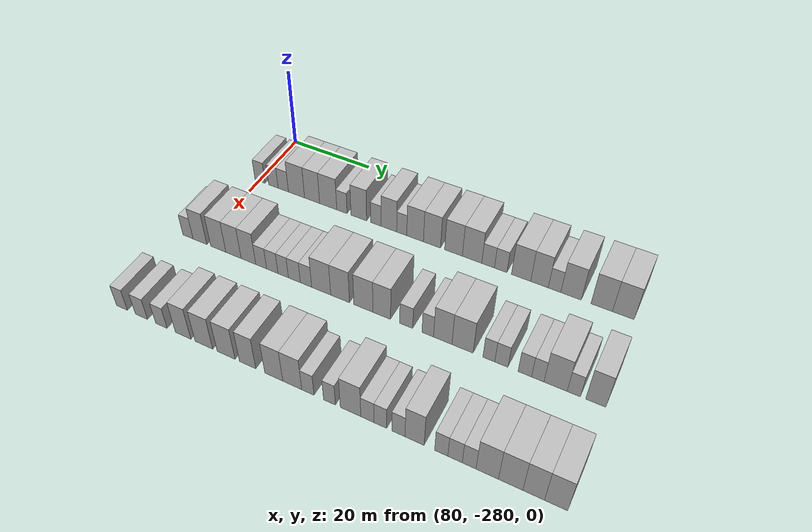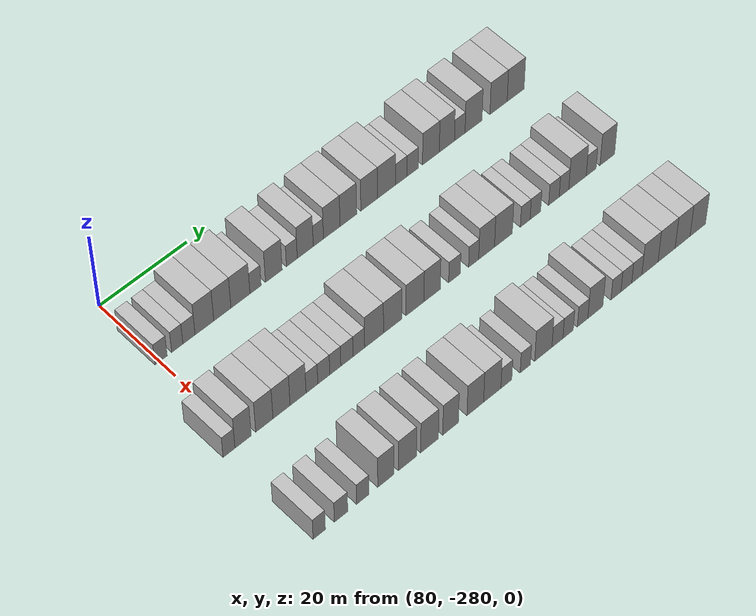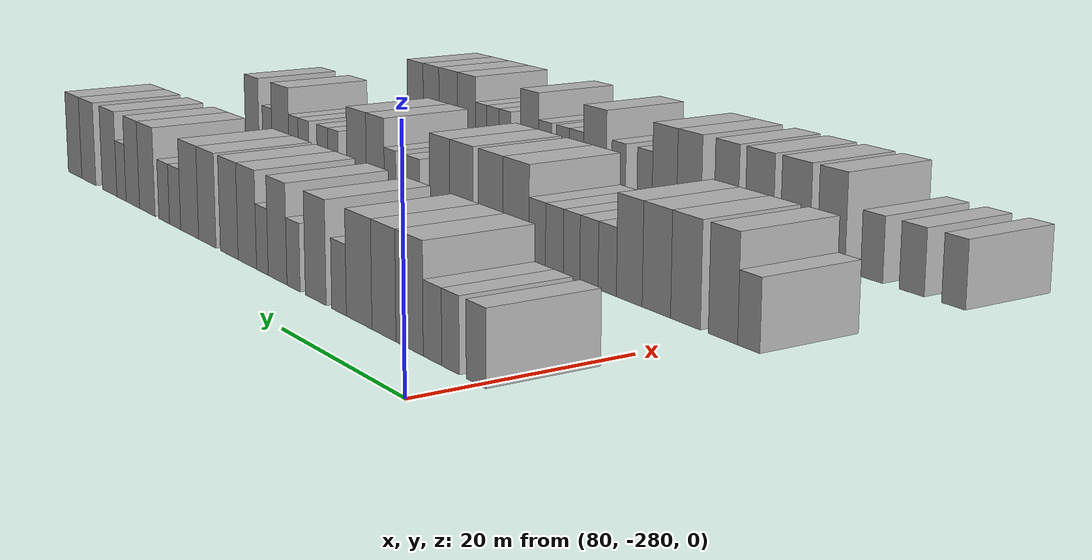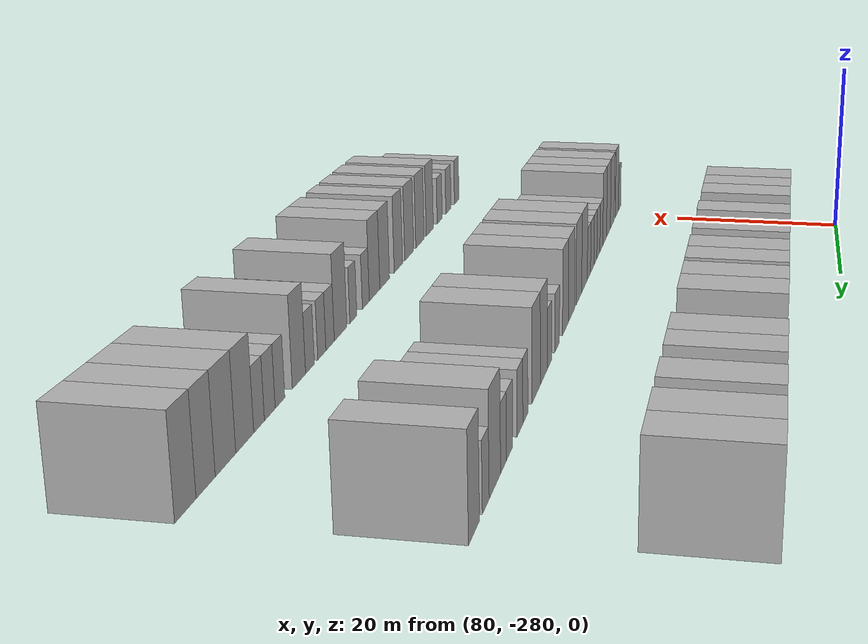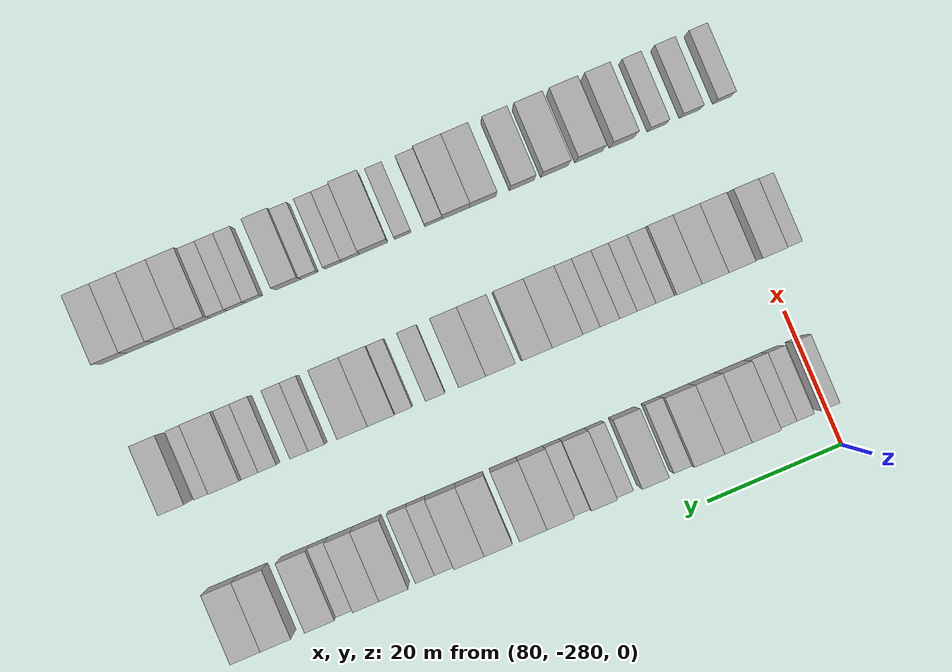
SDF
<sdf version="1.6">
 <world name="default">
  <model name="building_612">
   <static>1</static>
   <pose>91.0000 -279.7096 0 0.000000 0.000000 0.000000</pose>
   <link name="link">
    <pose>0 0 3.00 0 0 0</pose>
    <collision name="collision"><geometry><box><size>10.0000 2.7474 6.0000</size></box></geometry></collision>
    <visual name="visual">
     <cast_shadows>0</cast_shadows>
     <geometry><box><size>10.0000 2.7474 6.0000</size></box></geometry>
     <material>
      <script>
       <uri>model://HANNAS_wall/materials/scripts</uri>
       <uri>model://HANNAS_wall/materials/textures</uri>
       <name>vrc/HANNAS_wall</name>
      </script>
     </material>
    </visual>
   </link>
  </model>
  <model name="building_613">
   <static>1</static>
   <pose>91.0000 -276.0651 0 0.000000 0.000000 0.000000</pose>
   <link name="link">
    <pose>0 0 3.00 0 0 0</pose>
    <collision name="collision"><geometry><box><size>10.0000 2.5417 6.0000</size></box></geometry></collision>
    <visual name="visual">
     <cast_shadows>0</cast_shadows>
     <geometry><box><size>10.0000 2.5417 6.0000</size></box></geometry>
     <material>
      <script>
       <uri>model://HANNAS_wall/materials/scripts</uri>
       <uri>model://HANNAS_wall/materials/textures</uri>
       <name>vrc/HANNAS_wall</name>
      </script>
     </material>
    </visual>
   </link>
  </model>
  <model name="building_614">
   <static>1</static>
   <pose>91.0000 -273.4152 0 0.000000 0.000000 0.000000</pose>
   <link name="link">
    <pose>0 0 3.00 0 0 0</pose>
    <collision name="collision"><geometry><box><size>10.0000 2.7581 6.0000</size></box></geometry></collision>
    <visual name="visual">
     <cast_shadows>0</cast_shadows>
     <geometry><box><size>10.0000 2.7581 6.0000</size></box></geometry>
     <material>
      <script>
       <uri>model://HANNAS_wall/materials/scripts</uri>
       <uri>model://HANNAS_wall/materials/textures</uri>
       <name>vrc/HANNAS_wall</name>
      </script>
     </material>
    </visual>
   </link>
  </model>
  <model name="building_615">
   <static>1</static>
   <pose>91.0000 -269.9033 0 0.000000 0.000000 0.000000</pose>
   <link name="link">
    <pose>0 0 4.50 0 0 0</pose>
    <collision name="collision"><geometry><box><size>10.0000 4.2658 9.0000</size></box></geometry></collision>
    <visual name="visual">
     <cast_shadows>0</cast_shadows>
     <geometry><box><size>10.0000 4.2658 9.0000</size></box></geometry>
     <material>
      <script>
       <uri>model://HANNAS_wall/materials/scripts</uri>
       <uri>model://HANNAS_wall/materials/textures</uri>
       <name>vrc/HANNAS_wall</name>
      </script>
     </material>
    </visual>
   </link>
  </model>
  <model name="building_616">
   <static>1</static>
   <pose>91.0000 -265.8009 0 0.000000 0.000000 0.000000</pose>
   <link name="link">
    <pose>0 0 4.50 0 0 0</pose>
    <collision name="collision"><geometry><box><size>10.0000 3.9389 9.0000</size></box></geometry></collision>
    <visual name="visual">
     <cast_shadows>0</cast_shadows>
     <geometry><box><size>10.0000 3.9389 9.0000</size></box></geometry>
     <material>
      <script>
       <uri>model://HANNAS_wall/materials/scripts</uri>
       <uri>model://HANNAS_wall/materials/textures</uri>
       <name>vrc/HANNAS_wall</name>
      </script>
     </material>
    </visual>
   </link>
  </model>
  <model name="building_617">
   <static>1</static>
   <pose>91.0000 -261.6317 0 0.000000 0.000000 0.000000</pose>
   <link name="link">
    <pose>0 0 4.50 0 0 0</pose>
    <collision name="collision"><geometry><box><size>10.0000 4.3996 9.0000</size></box></geometry></collision>
    <visual name="visual">
     <cast_shadows>0</cast_shadows>
     <geometry><box><size>10.0000 4.3996 9.0000</size></box></geometry>
     <material>
      <script>
       <uri>model://HANNAS_wall/materials/scripts</uri>
       <uri>model://HANNAS_wall/materials/textures</uri>
       <name>vrc/HANNAS_wall</name>
      </script>
     </material>
    </visual>
   </link>
  </model>
  <model name="building_618">
   <static>1</static>
   <pose>91.0000 -258.1270 0 0.000000 0.000000 0.000000</pose>
   <link name="link">
    <pose>0 0 3.00 0 0 0</pose>
    <collision name="collision"><geometry><box><size>10.0000 2.6097 6.0000</size></box></geometry></collision>
    <visual name="visual">
     <cast_shadows>0</cast_shadows>
     <geometry><box><size>10.0000 2.6097 6.0000</size></box></geometry>
     <material>
      <script>
       <uri>model://HANNAS_wall/materials/scripts</uri>
       <uri>model://HANNAS_wall/materials/textures</uri>
       <name>vrc/HANNAS_wall</name>
      </script>
     </material>
    </visual>
   </link>
  </model>
  <model name="building_619">
   <static>1</static>
   <pose>91.0000 -253.8679 0 0.000000 0.000000 0.000000</pose>
   <link name="link">
    <pose>0 0 4.50 0 0 0</pose>
    <collision name="collision"><geometry><box><size>10.0000 3.9084 9.0000</size></box></geometry></collision>
    <visual name="visual">
     <cast_shadows>0</cast_shadows>
     <geometry><box><size>10.0000 3.9084 9.0000</size></box></geometry>
     <material>
      <script>
       <uri>model://HANNAS_wall/materials/scripts</uri>
       <uri>model://HANNAS_wall/materials/textures</uri>
       <name>vrc/HANNAS_wall</name>
      </script>
     </material>
    </visual>
   </link>
  </model>
  <model name="building_620">
   <static>1</static>
   <pose>91.0000 -249.6294 0 0.000000 0.000000 0.000000</pose>
   <link name="link">
    <pose>0 0 3.00 0 0 0</pose>
    <collision name="collision"><geometry><box><size>10.0000 2.5687 6.0000</size></box></geometry></collision>
    <visual name="visual">
     <cast_shadows>0</cast_shadows>
     <geometry><box><size>10.0000 2.5687 6.0000</size></box></geometry>
     <material>
      <script>
       <uri>model://HANNAS_wall/materials/scripts</uri>
       <uri>model://HANNAS_wall/materials/textures</uri>
       <name>vrc/HANNAS_wall</name>
      </script>
     </material>
    </visual>
   </link>
  </model>
  <model name="building_621">
   <static>1</static>
   <pose>91.0000 -246.4488 0 0.000000 0.000000 0.000000</pose>
   <link name="link">
    <pose>0 0 4.50 0 0 0</pose>
    <collision name="collision"><geometry><box><size>10.0000 3.7925 9.0000</size></box></geometry></collision>
    <visual name="visual">
     <cast_shadows>0</cast_shadows>
     <geometry><box><size>10.0000 3.7925 9.0000</size></box></geometry>
     <material>
      <script>
       <uri>model://HANNAS_wall/materials/scripts</uri>
       <uri>model://HANNAS_wall/materials/textures</uri>
       <name>vrc/HANNAS_wall</name>
      </script>
     </material>
    </visual>
   </link>
  </model>
  <model name="building_622">
   <static>1</static>
   <pose>91.0000 -243.3346 0 0.000000 0.000000 0.000000</pose>
   <link name="link">
    <pose>0 0 3.00 0 0 0</pose>
    <collision name="collision"><geometry><box><size>10.0000 2.4361 6.0000</size></box></geometry></collision>
    <visual name="visual">
     <cast_shadows>0</cast_shadows>
     <geometry><box><size>10.0000 2.4361 6.0000</size></box></geometry>
     <material>
      <script>
       <uri>model://HANNAS_wall/materials/scripts</uri>
       <uri>model://HANNAS_wall/materials/textures</uri>
       <name>vrc/HANNAS_wall</name>
      </script>
     </material>
    </visual>
   </link>
  </model>
  <model name="building_623">
   <static>1</static>
   <pose>91.0000 -240.1296 0 0.000000 0.000000 0.000000</pose>
   <link name="link">
    <pose>0 0 4.50 0 0 0</pose>
    <collision name="collision"><geometry><box><size>10.0000 3.9738 9.0000</size></box></geometry></collision>
    <visual name="visual">
     <cast_shadows>0</cast_shadows>
     <geometry><box><size>10.0000 3.9738 9.0000</size></box></geometry>
     <material>
      <script>
       <uri>model://HANNAS_wall/materials/scripts</uri>
       <uri>model://HANNAS_wall/materials/textures</uri>
       <name>vrc/HANNAS_wall</name>
      </script>
     </material>
    </visual>
   </link>
  </model>
  <model name="building_624">
   <static>1</static>
   <pose>91.0000 -236.1443 0 0.000000 0.000000 0.000000</pose>
   <link name="link">
    <pose>0 0 4.50 0 0 0</pose>
    <collision name="collision"><geometry><box><size>10.0000 3.9968 9.0000</size></box></geometry></collision>
    <visual name="visual">
     <cast_shadows>0</cast_shadows>
     <geometry><box><size>10.0000 3.9968 9.0000</size></box></geometry>
     <material>
      <script>
       <uri>model://HANNAS_wall/materials/scripts</uri>
       <uri>model://HANNAS_wall/materials/textures</uri>
       <name>vrc/HANNAS_wall</name>
      </script>
     </material>
    </visual>
   </link>
  </model>
  <model name="building_625">
   <static>1</static>
   <pose>91.0000 -231.1032 0 0.000000 0.000000 0.000000</pose>
   <link name="link">
    <pose>0 0 4.50 0 0 0</pose>
    <collision name="collision"><geometry><box><size>10.0000 4.0854 9.0000</size></box></geometry></collision>
    <visual name="visual">
     <cast_shadows>0</cast_shadows>
     <geometry><box><size>10.0000 4.0854 9.0000</size></box></geometry>
     <material>
      <script>
       <uri>model://HANNAS_wall/materials/scripts</uri>
       <uri>model://HANNAS_wall/materials/textures</uri>
       <name>vrc/HANNAS_wall</name>
      </script>
     </material>
    </visual>
   </link>
  </model>
  <model name="building_626">
   <static>1</static>
   <pose>91.0000 -226.8586 0 0.000000 0.000000 0.000000</pose>
   <link name="link">
    <pose>0 0 4.50 0 0 0</pose>
    <collision name="collision"><geometry><box><size>10.0000 4.4038 9.0000</size></box></geometry></collision>
    <visual name="visual">
     <cast_shadows>0</cast_shadows>
     <geometry><box><size>10.0000 4.4038 9.0000</size></box></geometry>
     <material>
      <script>
       <uri>model://HANNAS_wall/materials/scripts</uri>
       <uri>model://HANNAS_wall/materials/textures</uri>
       <name>vrc/HANNAS_wall</name>
      </script>
     </material>
    </visual>
   </link>
  </model>
  <model name="building_627">
   <static>1</static>
   <pose>91.0000 -223.2331 0 0.000000 0.000000 0.000000</pose>
   <link name="link">
    <pose>0 0 3.00 0 0 0</pose>
    <collision name="collision"><geometry><box><size>10.0000 2.8472 6.0000</size></box></geometry></collision>
    <visual name="visual">
     <cast_shadows>0</cast_shadows>
     <geometry><box><size>10.0000 2.8472 6.0000</size></box></geometry>
     <material>
      <script>
       <uri>model://HANNAS_wall/materials/scripts</uri>
       <uri>model://HANNAS_wall/materials/textures</uri>
       <name>vrc/HANNAS_wall</name>
      </script>
     </material>
    </visual>
   </link>
  </model>
  <model name="building_628">
   <static>1</static>
   <pose>91.0000 -220.4210 0 0.000000 0.000000 0.000000</pose>
   <link name="link">
    <pose>0 0 3.00 0 0 0</pose>
    <collision name="collision"><geometry><box><size>10.0000 2.7770 6.0000</size></box></geometry></collision>
    <visual name="visual">
     <cast_shadows>0</cast_shadows>
     <geometry><box><size>10.0000 2.7770 6.0000</size></box></geometry>
     <material>
      <script>
       <uri>model://HANNAS_wall/materials/scripts</uri>
       <uri>model://HANNAS_wall/materials/textures</uri>
       <name>vrc/HANNAS_wall</name>
      </script>
     </material>
    </visual>
   </link>
  </model>
  <model name="building_629">
   <static>1</static>
   <pose>91.0000 -215.9316 0 0.000000 0.000000 0.000000</pose>
   <link name="link">
    <pose>0 0 4.50 0 0 0</pose>
    <collision name="collision"><geometry><box><size>10.0000 4.2017 9.0000</size></box></geometry></collision>
    <visual name="visual">
     <cast_shadows>0</cast_shadows>
     <geometry><box><size>10.0000 4.2017 9.0000</size></box></geometry>
     <material>
      <script>
       <uri>model://HANNAS_wall/materials/scripts</uri>
       <uri>model://HANNAS_wall/materials/textures</uri>
       <name>vrc/HANNAS_wall</name>
      </script>
     </material>
    </visual>
   </link>
  </model>
  <model name="building_630">
   <static>1</static>
   <pose>91.0000 -211.9413 0 0.000000 0.000000 0.000000</pose>
   <link name="link">
    <pose>0 0 4.50 0 0 0</pose>
    <collision name="collision"><geometry><box><size>10.0000 3.7790 9.0000</size></box></geometry></collision>
    <visual name="visual">
     <cast_shadows>0</cast_shadows>
     <geometry><box><size>10.0000 3.7790 9.0000</size></box></geometry>
     <material>
      <script>
       <uri>model://HANNAS_wall/materials/scripts</uri>
       <uri>model://HANNAS_wall/materials/textures</uri>
       <name>vrc/HANNAS_wall</name>
      </script>
     </material>
    </visual>
   </link>
  </model>
  <model name="building_631">
   <static>1</static>
   <pose>91.0000 -208.7215 0 0.000000 0.000000 0.000000</pose>
   <link name="link">
    <pose>0 0 3.00 0 0 0</pose>
    <collision name="collision"><geometry><box><size>10.0000 2.6606 6.0000</size></box></geometry></collision>
    <visual name="visual">
     <cast_shadows>0</cast_shadows>
     <geometry><box><size>10.0000 2.6606 6.0000</size></box></geometry>
     <material>
      <script>
       <uri>model://HANNAS_wall/materials/scripts</uri>
       <uri>model://HANNAS_wall/materials/textures</uri>
       <name>vrc/HANNAS_wall</name>
      </script>
     </material>
    </visual>
   </link>
  </model>
  <model name="building_632">
   <static>1</static>
   <pose>91.0000 -205.2395 0 0.000000 0.000000 0.000000</pose>
   <link name="link">
    <pose>0 0 4.50 0 0 0</pose>
    <collision name="collision"><geometry><box><size>10.0000 4.3035 9.0000</size></box></geometry></collision>
    <visual name="visual">
     <cast_shadows>0</cast_shadows>
     <geometry><box><size>10.0000 4.3035 9.0000</size></box></geometry>
     <material>
      <script>
       <uri>model://HANNAS_wall/materials/scripts</uri>
       <uri>model://HANNAS_wall/materials/textures</uri>
       <name>vrc/HANNAS_wall</name>
      </script>
     </material>
    </visual>
   </link>
  </model>
  <model name="building_633">
   <static>1</static>
   <pose>91.0000 -198.8875 0 0.000000 0.000000 0.000000</pose>
   <link name="link">
    <pose>0 0 4.50 0 0 0</pose>
    <collision name="collision"><geometry><box><size>10.0000 4.4005 9.0000</size></box></geometry></collision>
    <visual name="visual">
     <cast_shadows>0</cast_shadows>
     <geometry><box><size>10.0000 4.4005 9.0000</size></box></geometry>
     <material>
      <script>
       <uri>model://HANNAS_wall/materials/scripts</uri>
       <uri>model://HANNAS_wall/materials/textures</uri>
       <name>vrc/HANNAS_wall</name>
      </script>
     </material>
    </visual>
   </link>
  </model>
  <model name="building_634">
   <static>1</static>
   <pose>91.0000 -194.5059 0 0.000000 0.000000 0.000000</pose>
   <link name="link">
    <pose>0 0 4.50 0 0 0</pose>
    <collision name="collision"><geometry><box><size>10.0000 4.3628 9.0000</size></box></geometry></collision>
    <visual name="visual">
     <cast_shadows>0</cast_shadows>
     <geometry><box><size>10.0000 4.3628 9.0000</size></box></geometry>
     <material>
      <script>
       <uri>model://HANNAS_wall/materials/scripts</uri>
       <uri>model://HANNAS_wall/materials/textures</uri>
       <name>vrc/HANNAS_wall</name>
      </script>
     </material>
    </visual>
   </link>
  </model>
  <model name="building_802">
   <static>1</static>
   <pose>113.0000 -283.6331 0 0.000000 0.000000 0.000000</pose>
   <link name="link">
    <pose>0 0 3.00 0 0 0</pose>
    <collision name="collision"><geometry><box><size>10.0000 2.6525 6.0000</size></box></geometry></collision>
    <visual name="visual">
     <cast_shadows>0</cast_shadows>
     <geometry><box><size>10.0000 2.6525 6.0000</size></box></geometry>
     <material>
      <script>
       <uri>model://HANNAS_wall/materials/scripts</uri>
       <uri>model://HANNAS_wall/materials/textures</uri>
       <name>vrc/HANNAS_wall</name>
      </script>
     </material>
    </visual>
   </link>
  </model>
  <model name="building_803">
   <static>1</static>
   <pose>113.0000 -280.4954 0 0.000000 0.000000 0.000000</pose>
   <link name="link">
    <pose>0 0 4.50 0 0 0</pose>
    <collision name="collision"><geometry><box><size>10.0000 3.6231 9.0000</size></box></geometry></collision>
    <visual name="visual">
     <cast_shadows>0</cast_shadows>
     <geometry><box><size>10.0000 3.6231 9.0000</size></box></geometry>
     <material>
      <script>
       <uri>model://HANNAS_wall/materials/scripts</uri>
       <uri>model://HANNAS_wall/materials/textures</uri>
       <name>vrc/HANNAS_wall</name>
      </script>
     </material>
    </visual>
   </link>
  </model>
  <model name="building_804">
   <static>1</static>
   <pose>113.0000 -275.7334 0 0.000000 0.000000 0.000000</pose>
   <link name="link">
    <pose>0 0 4.50 0 0 0</pose>
    <collision name="collision"><geometry><box><size>10.0000 3.9008 9.0000</size></box></geometry></collision>
    <visual name="visual">
     <cast_shadows>0</cast_shadows>
     <geometry><box><size>10.0000 3.9008 9.0000</size></box></geometry>
     <material>
      <script>
       <uri>model://HANNAS_wall/materials/scripts</uri>
       <uri>model://HANNAS_wall/materials/textures</uri>
       <name>vrc/HANNAS_wall</name>
      </script>
     </material>
    </visual>
   </link>
  </model>
  <model name="building_805">
   <static>1</static>
   <pose>113.0000 -271.8459 0 0.000000 0.000000 0.000000</pose>
   <link name="link">
    <pose>0 0 4.50 0 0 0</pose>
    <collision name="collision"><geometry><box><size>10.0000 3.8742 9.0000</size></box></geometry></collision>
    <visual name="visual">
     <cast_shadows>0</cast_shadows>
     <geometry><box><size>10.0000 3.8742 9.0000</size></box></geometry>
     <material>
      <script>
       <uri>model://HANNAS_wall/materials/scripts</uri>
       <uri>model://HANNAS_wall/materials/textures</uri>
       <name>vrc/HANNAS_wall</name>
      </script>
     </material>
    </visual>
   </link>
  </model>
  <model name="building_806">
   <static>1</static>
   <pose>113.0000 -268.0803 0 0.000000 0.000000 0.000000</pose>
   <link name="link">
    <pose>0 0 4.50 0 0 0</pose>
    <collision name="collision"><geometry><box><size>10.0000 3.6570 9.0000</size></box></geometry></collision>
    <visual name="visual">
     <cast_shadows>0</cast_shadows>
     <geometry><box><size>10.0000 3.6570 9.0000</size></box></geometry>
     <material>
      <script>
       <uri>model://HANNAS_wall/materials/scripts</uri>
       <uri>model://HANNAS_wall/materials/textures</uri>
       <name>vrc/HANNAS_wall</name>
      </script>
     </material>
    </visual>
   </link>
  </model>
  <model name="building_807">
   <static>1</static>
   <pose>113.0000 -264.9099 0 0.000000 0.000000 0.000000</pose>
   <link name="link">
    <pose>0 0 3.00 0 0 0</pose>
    <collision name="collision"><geometry><box><size>10.0000 2.6837 6.0000</size></box></geometry></collision>
    <visual name="visual">
     <cast_shadows>0</cast_shadows>
     <geometry><box><size>10.0000 2.6837 6.0000</size></box></geometry>
     <material>
      <script>
       <uri>model://HANNAS_wall/materials/scripts</uri>
       <uri>model://HANNAS_wall/materials/textures</uri>
       <name>vrc/HANNAS_wall</name>
      </script>
     </material>
    </visual>
   </link>
  </model>
  <model name="building_808">
   <static>1</static>
   <pose>113.0000 -262.1835 0 0.000000 0.000000 0.000000</pose>
   <link name="link">
    <pose>0 0 3.00 0 0 0</pose>
    <collision name="collision"><geometry><box><size>10.0000 2.7693 6.0000</size></box></geometry></collision>
    <visual name="visual">
     <cast_shadows>0</cast_shadows>
     <geometry><box><size>10.0000 2.7693 6.0000</size></box></geometry>
     <material>
      <script>
       <uri>model://HANNAS_wall/materials/scripts</uri>
       <uri>model://HANNAS_wall/materials/textures</uri>
       <name>vrc/HANNAS_wall</name>
      </script>
     </material>
    </visual>
   </link>
  </model>
  <model name="building_809">
   <static>1</static>
   <pose>113.0000 -259.5311 0 0.000000 0.000000 0.000000</pose>
   <link name="link">
    <pose>0 0 3.00 0 0 0</pose>
    <collision name="collision"><geometry><box><size>10.0000 2.5355 6.0000</size></box></geometry></collision>
    <visual name="visual">
     <cast_shadows>0</cast_shadows>
     <geometry><box><size>10.0000 2.5355 6.0000</size></box></geometry>
     <material>
      <script>
       <uri>model://HANNAS_wall/materials/scripts</uri>
       <uri>model://HANNAS_wall/materials/textures</uri>
       <name>vrc/HANNAS_wall</name>
      </script>
     </material>
    </visual>
   </link>
  </model>
  <model name="building_810">
   <static>1</static>
   <pose>113.0000 -256.8326 0 0.000000 0.000000 0.000000</pose>
   <link name="link">
    <pose>0 0 3.00 0 0 0</pose>
    <collision name="collision"><geometry><box><size>10.0000 2.8615 6.0000</size></box></geometry></collision>
    <visual name="visual">
     <cast_shadows>0</cast_shadows>
     <geometry><box><size>10.0000 2.8615 6.0000</size></box></geometry>
     <material>
      <script>
       <uri>model://HANNAS_wall/materials/scripts</uri>
       <uri>model://HANNAS_wall/materials/textures</uri>
       <name>vrc/HANNAS_wall</name>
      </script>
     </material>
    </visual>
   </link>
  </model>
  <model name="building_811">
   <static>1</static>
   <pose>113.0000 -254.0545 0 0.000000 0.000000 0.000000</pose>
   <link name="link">
    <pose>0 0 3.00 0 0 0</pose>
    <collision name="collision"><geometry><box><size>10.0000 2.6946 6.0000</size></box></geometry></collision>
    <visual name="visual">
     <cast_shadows>0</cast_shadows>
     <geometry><box><size>10.0000 2.6946 6.0000</size></box></geometry>
     <material>
      <script>
       <uri>model://HANNAS_wall/materials/scripts</uri>
       <uri>model://HANNAS_wall/materials/textures</uri>
       <name>vrc/HANNAS_wall</name>
      </script>
     </material>
    </visual>
   </link>
  </model>
  <model name="building_812">
   <static>1</static>
   <pose>113.0000 -250.4845 0 0.000000 0.000000 0.000000</pose>
   <link name="link">
    <pose>0 0 4.50 0 0 0</pose>
    <collision name="collision"><geometry><box><size>10.0000 4.4455 9.0000</size></box></geometry></collision>
    <visual name="visual">
     <cast_shadows>0</cast_shadows>
     <geometry><box><size>10.0000 4.4455 9.0000</size></box></geometry>
     <material>
      <script>
       <uri>model://HANNAS_wall/materials/scripts</uri>
       <uri>model://HANNAS_wall/materials/textures</uri>
       <name>vrc/HANNAS_wall</name>
      </script>
     </material>
    </visual>
   </link>
  </model>
  <model name="building_813">
   <static>1</static>
   <pose>113.0000 -246.0957 0 0.000000 0.000000 0.000000</pose>
   <link name="link">
    <pose>0 0 4.50 0 0 0</pose>
    <collision name="collision"><geometry><box><size>10.0000 4.3322 9.0000</size></box></geometry></collision>
    <visual name="visual">
     <cast_shadows>0</cast_shadows>
     <geometry><box><size>10.0000 4.3322 9.0000</size></box></geometry>
     <material>
      <script>
       <uri>model://HANNAS_wall/materials/scripts</uri>
       <uri>model://HANNAS_wall/materials/textures</uri>
       <name>vrc/HANNAS_wall</name>
      </script>
     </material>
    </visual>
   </link>
  </model>
  <model name="building_814">
   <static>1</static>
   <pose>113.0000 -240.7820 0 0.000000 0.000000 0.000000</pose>
   <link name="link">
    <pose>0 0 4.50 0 0 0</pose>
    <collision name="collision"><geometry><box><size>10.0000 4.2951 9.0000</size></box></geometry></collision>
    <visual name="visual">
     <cast_shadows>0</cast_shadows>
     <geometry><box><size>10.0000 4.2951 9.0000</size></box></geometry>
     <material>
      <script>
       <uri>model://HANNAS_wall/materials/scripts</uri>
       <uri>model://HANNAS_wall/materials/textures</uri>
       <name>vrc/HANNAS_wall</name>
      </script>
     </material>
    </visual>
   </link>
  </model>
  <model name="building_815">
   <static>1</static>
   <pose>113.0000 -236.6779 0 0.000000 0.000000 0.000000</pose>
   <link name="link">
    <pose>0 0 4.50 0 0 0</pose>
    <collision name="collision"><geometry><box><size>10.0000 3.9132 9.0000</size></box></geometry></collision>
    <visual name="visual">
     <cast_shadows>0</cast_shadows>
     <geometry><box><size>10.0000 3.9132 9.0000</size></box></geometry>
     <material>
      <script>
       <uri>model://HANNAS_wall/materials/scripts</uri>
       <uri>model://HANNAS_wall/materials/textures</uri>
       <name>vrc/HANNAS_wall</name>
      </script>
     </material>
    </visual>
   </link>
  </model>
  <model name="building_816">
   <static>1</static>
   <pose>113.0000 -231.2999 0 0.000000 0.000000 0.000000</pose>
   <link name="link">
    <pose>0 0 3.00 0 0 0</pose>
    <collision name="collision"><geometry><box><size>10.0000 2.8428 6.0000</size></box></geometry></collision>
    <visual name="visual">
     <cast_shadows>0</cast_shadows>
     <geometry><box><size>10.0000 2.8428 6.0000</size></box></geometry>
     <material>
      <script>
       <uri>model://HANNAS_wall/materials/scripts</uri>
       <uri>model://HANNAS_wall/materials/textures</uri>
       <name>vrc/HANNAS_wall</name>
      </script>
     </material>
    </visual>
   </link>
  </model>
  <model name="building_817">
   <static>1</static>
   <pose>113.0000 -226.6453 0 0.000000 0.000000 0.000000</pose>
   <link name="link">
    <pose>0 0 3.00 0 0 0</pose>
    <collision name="collision"><geometry><box><size>10.0000 2.4665 6.0000</size></box></geometry></collision>
    <visual name="visual">
     <cast_shadows>0</cast_shadows>
     <geometry><box><size>10.0000 2.4665 6.0000</size></box></geometry>
     <material>
      <script>
       <uri>model://HANNAS_wall/materials/scripts</uri>
       <uri>model://HANNAS_wall/materials/textures</uri>
       <name>vrc/HANNAS_wall</name>
      </script>
     </material>
    </visual>
   </link>
  </model>
  <model name="building_818">
   <static>1</static>
   <pose>113.0000 -223.4707 0 0.000000 0.000000 0.000000</pose>
   <link name="link">
    <pose>0 0 4.50 0 0 0</pose>
    <collision name="collision"><geometry><box><size>10.0000 3.8828 9.0000</size></box></geometry></collision>
    <visual name="visual">
     <cast_shadows>0</cast_shadows>
     <geometry><box><size>10.0000 3.8828 9.0000</size></box></geometry>
     <material>
      <script>
       <uri>model://HANNAS_wall/materials/scripts</uri>
       <uri>model://HANNAS_wall/materials/textures</uri>
       <name>vrc/HANNAS_wall</name>
      </script>
     </material>
    </visual>
   </link>
  </model>
  <model name="building_819">
   <static>1</static>
   <pose>113.0000 -219.3328 0 0.000000 0.000000 0.000000</pose>
   <link name="link">
    <pose>0 0 4.50 0 0 0</pose>
    <collision name="collision"><geometry><box><size>10.0000 4.3932 9.0000</size></box></geometry></collision>
    <visual name="visual">
     <cast_shadows>0</cast_shadows>
     <geometry><box><size>10.0000 4.3932 9.0000</size></box></geometry>
     <material>
      <script>
       <uri>model://HANNAS_wall/materials/scripts</uri>
       <uri>model://HANNAS_wall/materials/textures</uri>
       <name>vrc/HANNAS_wall</name>
      </script>
     </material>
    </visual>
   </link>
  </model>
  <model name="building_820">
   <static>1</static>
   <pose>113.0000 -213.9266 0 0.000000 0.000000 0.000000</pose>
   <link name="link">
    <pose>0 0 3.00 0 0 0</pose>
    <collision name="collision"><geometry><box><size>10.0000 2.4192 6.0000</size></box></geometry></collision>
    <visual name="visual">
     <cast_shadows>0</cast_shadows>
     <geometry><box><size>10.0000 2.4192 6.0000</size></box></geometry>
     <material>
      <script>
       <uri>model://HANNAS_wall/materials/scripts</uri>
       <uri>model://HANNAS_wall/materials/textures</uri>
       <name>vrc/HANNAS_wall</name>
      </script>
     </material>
    </visual>
   </link>
  </model>
  <model name="building_821">
   <static>1</static>
   <pose>113.0000 -211.3890 0 0.000000 0.000000 0.000000</pose>
   <link name="link">
    <pose>0 0 3.00 0 0 0</pose>
    <collision name="collision"><geometry><box><size>10.0000 2.6560 6.0000</size></box></geometry></collision>
    <visual name="visual">
     <cast_shadows>0</cast_shadows>
     <geometry><box><size>10.0000 2.6560 6.0000</size></box></geometry>
     <material>
      <script>
       <uri>model://HANNAS_wall/materials/scripts</uri>
       <uri>model://HANNAS_wall/materials/textures</uri>
       <name>vrc/HANNAS_wall</name>
      </script>
     </material>
    </visual>
   </link>
  </model>
  <model name="building_822">
   <static>1</static>
   <pose>113.0000 -206.7290 0 0.000000 0.000000 0.000000</pose>
   <link name="link">
    <pose>0 0 3.00 0 0 0</pose>
    <collision name="collision"><geometry><box><size>10.0000 2.6640 6.0000</size></box></geometry></collision>
    <visual name="visual">
     <cast_shadows>0</cast_shadows>
     <geometry><box><size>10.0000 2.6640 6.0000</size></box></geometry>
     <material>
      <script>
       <uri>model://HANNAS_wall/materials/scripts</uri>
       <uri>model://HANNAS_wall/materials/textures</uri>
       <name>vrc/HANNAS_wall</name>
      </script>
     </material>
    </visual>
   </link>
  </model>
  <model name="building_823">
   <static>1</static>
   <pose>113.0000 -204.1889 0 0.000000 0.000000 0.000000</pose>
   <link name="link">
    <pose>0 0 3.00 0 0 0</pose>
    <collision name="collision"><geometry><box><size>10.0000 2.4161 6.0000</size></box></geometry></collision>
    <visual name="visual">
     <cast_shadows>0</cast_shadows>
     <geometry><box><size>10.0000 2.4161 6.0000</size></box></geometry>
     <material>
      <script>
       <uri>model://HANNAS_wall/materials/scripts</uri>
       <uri>model://HANNAS_wall/materials/textures</uri>
       <name>vrc/HANNAS_wall</name>
      </script>
     </material>
    </visual>
   </link>
  </model>
  <model name="building_824">
   <static>1</static>
   <pose>113.0000 -200.7505 0 0.000000 0.000000 0.000000</pose>
   <link name="link">
    <pose>0 0 4.50 0 0 0</pose>
    <collision name="collision"><geometry><box><size>10.0000 4.4608 9.0000</size></box></geometry></collision>
    <visual name="visual">
     <cast_shadows>0</cast_shadows>
     <geometry><box><size>10.0000 4.4608 9.0000</size></box></geometry>
     <material>
      <script>
       <uri>model://HANNAS_wall/materials/scripts</uri>
       <uri>model://HANNAS_wall/materials/textures</uri>
       <name>vrc/HANNAS_wall</name>
      </script>
     </material>
    </visual>
   </link>
  </model>
  <model name="building_825">
   <static>1</static>
   <pose>113.0000 -197.2656 0 0.000000 0.000000 0.000000</pose>
   <link name="link">
    <pose>0 0 3.00 0 0 0</pose>
    <collision name="collision"><geometry><box><size>10.0000 2.5090 6.0000</size></box></geometry></collision>
    <visual name="visual">
     <cast_shadows>0</cast_shadows>
     <geometry><box><size>10.0000 2.5090 6.0000</size></box></geometry>
     <material>
      <script>
       <uri>model://HANNAS_wall/materials/scripts</uri>
       <uri>model://HANNAS_wall/materials/textures</uri>
       <name>vrc/HANNAS_wall</name>
      </script>
     </material>
    </visual>
   </link>
  </model>
  <model name="building_826">
   <static>1</static>
   <pose>113.0000 -193.1287 0 0.000000 0.000000 0.000000</pose>
   <link name="link">
    <pose>0 0 4.50 0 0 0</pose>
    <collision name="collision"><geometry><box><size>10.0000 3.7650 9.0000</size></box></geometry></collision>
    <visual name="visual">
     <cast_shadows>0</cast_shadows>
     <geometry><box><size>10.0000 3.7650 9.0000</size></box></geometry>
     <material>
      <script>
       <uri>model://HANNAS_wall/materials/scripts</uri>
       <uri>model://HANNAS_wall/materials/textures</uri>
       <name>vrc/HANNAS_wall</name>
      </script>
     </material>
    </visual>
   </link>
  </model>
  <model name="building_990">
   <static>1</static>
   <pose>135.0000 -283.3313 0 0.000000 0.000000 0.000000</pose>
   <link name="link">
    <pose>0 0 3.00 0 0 0</pose>
    <collision name="collision"><geometry><box><size>10.0000 2.7159 6.0000</size></box></geometry></collision>
    <visual name="visual">
     <cast_shadows>0</cast_shadows>
     <geometry><box><size>10.0000 2.7159 6.0000</size></box></geometry>
     <material>
      <script>
       <uri>model://HANNAS_wall/materials/scripts</uri>
       <uri>model://HANNAS_wall/materials/textures</uri>
       <name>vrc/HANNAS_wall</name>
      </script>
     </material>
    </visual>
   </link>
  </model>
  <model name="building_991">
   <static>1</static>
   <pose>135.0000 -278.4788 0 0.000000 0.000000 0.000000</pose>
   <link name="link">
    <pose>0 0 3.00 0 0 0</pose>
    <collision name="collision"><geometry><box><size>10.0000 2.9890 6.0000</size></box></geometry></collision>
    <visual name="visual">
     <cast_shadows>0</cast_shadows>
     <geometry><box><size>10.0000 2.9890 6.0000</size></box></geometry>
     <material>
      <script>
       <uri>model://HANNAS_wall/materials/scripts</uri>
       <uri>model://HANNAS_wall/materials/textures</uri>
       <name>vrc/HANNAS_wall</name>
      </script>
     </material>
    </visual>
   </link>
  </model>
  <model name="building_992">
   <static>1</static>
   <pose>135.0000 -273.5956 0 0.000000 0.000000 0.000000</pose>
   <link name="link">
    <pose>0 0 3.00 0 0 0</pose>
    <collision name="collision"><geometry><box><size>10.0000 2.7775 6.0000</size></box></geometry></collision>
    <visual name="visual">
     <cast_shadows>0</cast_shadows>
     <geometry><box><size>10.0000 2.7775 6.0000</size></box></geometry>
     <material>
      <script>
       <uri>model://HANNAS_wall/materials/scripts</uri>
       <uri>model://HANNAS_wall/materials/textures</uri>
       <name>vrc/HANNAS_wall</name>
      </script>
     </material>
    </visual>
   </link>
  </model>
  <model name="building_993">
   <static>1</static>
   <pose>135.0000 -268.3624 0 0.000000 0.000000 0.000000</pose>
   <link name="link">
    <pose>0 0 4.50 0 0 0</pose>
    <collision name="collision"><geometry><box><size>10.0000 3.6889 9.0000</size></box></geometry></collision>
    <visual name="visual">
     <cast_shadows>0</cast_shadows>
     <geometry><box><size>10.0000 3.6889 9.0000</size></box></geometry>
     <material>
      <script>
       <uri>model://HANNAS_wall/materials/scripts</uri>
       <uri>model://HANNAS_wall/materials/textures</uri>
       <name>vrc/HANNAS_wall</name>
      </script>
     </material>
    </visual>
   </link>
  </model>
  <model name="building_994">
   <static>1</static>
   <pose>135.0000 -263.4581 0 0.000000 0.000000 0.000000</pose>
   <link name="link">
    <pose>0 0 4.50 0 0 0</pose>
    <collision name="collision"><geometry><box><size>10.0000 4.1198 9.0000</size></box></geometry></collision>
    <visual name="visual">
     <cast_shadows>0</cast_shadows>
     <geometry><box><size>10.0000 4.1198 9.0000</size></box></geometry>
     <material>
      <script>
       <uri>model://HANNAS_wall/materials/scripts</uri>
       <uri>model://HANNAS_wall/materials/textures</uri>
       <name>vrc/HANNAS_wall</name>
      </script>
     </material>
    </visual>
   </link>
  </model>
  <model name="building_995">
   <static>1</static>
   <pose>135.0000 -258.3466 0 0.000000 0.000000 0.000000</pose>
   <link name="link">
    <pose>0 0 4.50 0 0 0</pose>
    <collision name="collision"><geometry><box><size>10.0000 4.1032 9.0000</size></box></geometry></collision>
    <visual name="visual">
     <cast_shadows>0</cast_shadows>
     <geometry><box><size>10.0000 4.1032 9.0000</size></box></geometry>
     <material>
      <script>
       <uri>model://HANNAS_wall/materials/scripts</uri>
       <uri>model://HANNAS_wall/materials/textures</uri>
       <name>vrc/HANNAS_wall</name>
      </script>
     </material>
    </visual>
   </link>
  </model>
  <model name="building_996">
   <static>1</static>
   <pose>135.0000 -253.4659 0 0.000000 0.000000 0.000000</pose>
   <link name="link">
    <pose>0 0 4.50 0 0 0</pose>
    <collision name="collision"><geometry><box><size>10.0000 3.6581 9.0000</size></box></geometry></collision>
    <visual name="visual">
     <cast_shadows>0</cast_shadows>
     <geometry><box><size>10.0000 3.6581 9.0000</size></box></geometry>
     <material>
      <script>
       <uri>model://HANNAS_wall/materials/scripts</uri>
       <uri>model://HANNAS_wall/materials/textures</uri>
       <name>vrc/HANNAS_wall</name>
      </script>
     </material>
    </visual>
   </link>
  </model>
  <model name="building_997">
   <static>1</static>
   <pose>135.0000 -247.6766 0 0.000000 0.000000 0.000000</pose>
   <link name="link">
    <pose>0 0 4.50 0 0 0</pose>
    <collision name="collision"><geometry><box><size>10.0000 3.9205 9.0000</size></box></geometry></collision>
    <visual name="visual">
     <cast_shadows>0</cast_shadows>
     <geometry><box><size>10.0000 3.9205 9.0000</size></box></geometry>
     <material>
      <script>
       <uri>model://HANNAS_wall/materials/scripts</uri>
       <uri>model://HANNAS_wall/materials/textures</uri>
       <name>vrc/HANNAS_wall</name>
      </script>
     </material>
    </visual>
   </link>
  </model>
  <model name="building_998">
   <static>1</static>
   <pose>135.0000 -243.6696 0 0.000000 0.000000 0.000000</pose>
   <link name="link">
    <pose>0 0 4.50 0 0 0</pose>
    <collision name="collision"><geometry><box><size>10.0000 4.0936 9.0000</size></box></geometry></collision>
    <visual name="visual">
     <cast_shadows>0</cast_shadows>
     <geometry><box><size>10.0000 4.0936 9.0000</size></box></geometry>
     <material>
      <script>
       <uri>model://HANNAS_wall/materials/scripts</uri>
       <uri>model://HANNAS_wall/materials/textures</uri>
       <name>vrc/HANNAS_wall</name>
      </script>
     </material>
    </visual>
   </link>
  </model>
  <model name="building_999">
   <static>1</static>
   <pose>135.0000 -240.3217 0 0.000000 0.000000 0.000000</pose>
   <link name="link">
    <pose>0 0 3.00 0 0 0</pose>
    <collision name="collision"><geometry><box><size>10.0000 2.6021 6.0000</size></box></geometry></collision>
    <visual name="visual">
     <cast_shadows>0</cast_shadows>
     <geometry><box><size>10.0000 2.6021 6.0000</size></box></geometry>
     <material>
      <script>
       <uri>model://HANNAS_wall/materials/scripts</uri>
       <uri>model://HANNAS_wall/materials/textures</uri>
       <name>vrc/HANNAS_wall</name>
      </script>
     </material>
    </visual>
   </link>
  </model>
  <model name="building_1000">
   <static>1</static>
   <pose>135.0000 -235.7819 0 0.000000 0.000000 0.000000</pose>
   <link name="link">
    <pose>0 0 3.00 0 0 0</pose>
    <collision name="collision"><geometry><box><size>10.0000 2.4777 6.0000</size></box></geometry></collision>
    <visual name="visual">
     <cast_shadows>0</cast_shadows>
     <geometry><box><size>10.0000 2.4777 6.0000</size></box></geometry>
     <material>
      <script>
       <uri>model://HANNAS_wall/materials/scripts</uri>
       <uri>model://HANNAS_wall/materials/textures</uri>
       <name>vrc/HANNAS_wall</name>
      </script>
     </material>
    </visual>
   </link>
  </model>
  <model name="building_1001">
   <static>1</static>
   <pose>135.0000 -231.4469 0 0.000000 0.000000 0.000000</pose>
   <link name="link">
    <pose>0 0 4.50 0 0 0</pose>
    <collision name="collision"><geometry><box><size>10.0000 4.1922 9.0000</size></box></geometry></collision>
    <visual name="visual">
     <cast_shadows>0</cast_shadows>
     <geometry><box><size>10.0000 4.1922 9.0000</size></box></geometry>
     <material>
      <script>
       <uri>model://HANNAS_wall/materials/scripts</uri>
       <uri>model://HANNAS_wall/materials/textures</uri>
       <name>vrc/HANNAS_wall</name>
      </script>
     </material>
    </visual>
   </link>
  </model>
  <model name="building_1002">
   <static>1</static>
   <pose>135.0000 -228.0173 0 0.000000 0.000000 0.000000</pose>
   <link name="link">
    <pose>0 0 3.00 0 0 0</pose>
    <collision name="collision"><geometry><box><size>10.0000 2.6671 6.0000</size></box></geometry></collision>
    <visual name="visual">
     <cast_shadows>0</cast_shadows>
     <geometry><box><size>10.0000 2.6671 6.0000</size></box></geometry>
     <material>
      <script>
       <uri>model://HANNAS_wall/materials/scripts</uri>
       <uri>model://HANNAS_wall/materials/textures</uri>
       <name>vrc/HANNAS_wall</name>
      </script>
     </material>
    </visual>
   </link>
  </model>
  <model name="building_1003">
   <static>1</static>
   <pose>135.0000 -225.4216 0 0.000000 0.000000 0.000000</pose>
   <link name="link">
    <pose>0 0 3.00 0 0 0</pose>
    <collision name="collision"><geometry><box><size>10.0000 2.5243 6.0000</size></box></geometry></collision>
    <visual name="visual">
     <cast_shadows>0</cast_shadows>
     <geometry><box><size>10.0000 2.5243 6.0000</size></box></geometry>
     <material>
      <script>
       <uri>model://HANNAS_wall/materials/scripts</uri>
       <uri>model://HANNAS_wall/materials/textures</uri>
       <name>vrc/HANNAS_wall</name>
      </script>
     </material>
    </visual>
   </link>
  </model>
  <model name="building_1004">
   <static>1</static>
   <pose>135.0000 -221.8701 0 0.000000 0.000000 0.000000</pose>
   <link name="link">
    <pose>0 0 3.00 0 0 0</pose>
    <collision name="collision"><geometry><box><size>10.0000 2.5787 6.0000</size></box></geometry></collision>
    <visual name="visual">
     <cast_shadows>0</cast_shadows>
     <geometry><box><size>10.0000 2.5787 6.0000</size></box></geometry>
     <material>
      <script>
       <uri>model://HANNAS_wall/materials/scripts</uri>
       <uri>model://HANNAS_wall/materials/textures</uri>
       <name>vrc/HANNAS_wall</name>
      </script>
     </material>
    </visual>
   </link>
  </model>
  <model name="building_1005">
   <static>1</static>
   <pose>135.0000 -218.7215 0 0.000000 0.000000 0.000000</pose>
   <link name="link">
    <pose>0 0 4.50 0 0 0</pose>
    <collision name="collision"><geometry><box><size>10.0000 3.7183 9.0000</size></box></geometry></collision>
    <visual name="visual">
     <cast_shadows>0</cast_shadows>
     <geometry><box><size>10.0000 3.7183 9.0000</size></box></geometry>
     <material>
      <script>
       <uri>model://HANNAS_wall/materials/scripts</uri>
       <uri>model://HANNAS_wall/materials/textures</uri>
       <name>vrc/HANNAS_wall</name>
      </script>
     </material>
    </visual>
   </link>
  </model>
  <model name="building_1006">
   <static>1</static>
   <pose>135.0000 -213.6129 0 0.000000 0.000000 0.000000</pose>
   <link name="link">
    <pose>0 0 3.00 0 0 0</pose>
    <collision name="collision"><geometry><box><size>10.0000 2.4989 6.0000</size></box></geometry></collision>
    <visual name="visual">
     <cast_shadows>0</cast_shadows>
     <geometry><box><size>10.0000 2.4989 6.0000</size></box></geometry>
     <material>
      <script>
       <uri>model://HANNAS_wall/materials/scripts</uri>
       <uri>model://HANNAS_wall/materials/textures</uri>
       <name>vrc/HANNAS_wall</name>
      </script>
     </material>
    </visual>
   </link>
  </model>
  <model name="building_1007">
   <static>1</static>
   <pose>135.0000 -211.0217 0 0.000000 0.000000 0.000000</pose>
   <link name="link">
    <pose>0 0 3.00 0 0 0</pose>
    <collision name="collision"><geometry><box><size>10.0000 2.6835 6.0000</size></box></geometry></collision>
    <visual name="visual">
     <cast_shadows>0</cast_shadows>
     <geometry><box><size>10.0000 2.6835 6.0000</size></box></geometry>
     <material>
      <script>
       <uri>model://HANNAS_wall/materials/scripts</uri>
       <uri>model://HANNAS_wall/materials/textures</uri>
       <name>vrc/HANNAS_wall</name>
      </script>
     </material>
    </visual>
   </link>
  </model>
  <model name="building_1008">
   <static>1</static>
   <pose>135.0000 -208.4033 0 0.000000 0.000000 0.000000</pose>
   <link name="link">
    <pose>0 0 3.00 0 0 0</pose>
    <collision name="collision"><geometry><box><size>10.0000 2.5532 6.0000</size></box></geometry></collision>
    <visual name="visual">
     <cast_shadows>0</cast_shadows>
     <geometry><box><size>10.0000 2.5532 6.0000</size></box></geometry>
     <material>
      <script>
       <uri>model://HANNAS_wall/materials/scripts</uri>
       <uri>model://HANNAS_wall/materials/textures</uri>
       <name>vrc/HANNAS_wall</name>
      </script>
     </material>
    </visual>
   </link>
  </model>
  <model name="building_1009">
   <static>1</static>
   <pose>135.0000 -205.0821 0 0.000000 0.000000 0.000000</pose>
   <link name="link">
    <pose>0 0 4.50 0 0 0</pose>
    <collision name="collision"><geometry><box><size>10.0000 4.0893 9.0000</size></box></geometry></collision>
    <visual name="visual">
     <cast_shadows>0</cast_shadows>
     <geometry><box><size>10.0000 4.0893 9.0000</size></box></geometry>
     <material>
      <script>
       <uri>model://HANNAS_wall/materials/scripts</uri>
       <uri>model://HANNAS_wall/materials/textures</uri>
       <name>vrc/HANNAS_wall</name>
      </script>
     </material>
    </visual>
   </link>
  </model>
  <model name="building_1010">
   <static>1</static>
   <pose>135.0000 -200.8588 0 0.000000 0.000000 0.000000</pose>
   <link name="link">
    <pose>0 0 4.50 0 0 0</pose>
    <collision name="collision"><geometry><box><size>10.0000 4.3573 9.0000</size></box></geometry></collision>
    <visual name="visual">
     <cast_shadows>0</cast_shadows>
     <geometry><box><size>10.0000 4.3573 9.0000</size></box></geometry>
     <material>
      <script>
       <uri>model://HANNAS_wall/materials/scripts</uri>
       <uri>model://HANNAS_wall/materials/textures</uri>
       <name>vrc/HANNAS_wall</name>
      </script>
     </material>
    </visual>
   </link>
  </model>
  <model name="building_1011">
   <static>1</static>
   <pose>135.0000 -196.7778 0 0.000000 0.000000 0.000000</pose>
   <link name="link">
    <pose>0 0 4.50 0 0 0</pose>
    <collision name="collision"><geometry><box><size>10.0000 3.8046 9.0000</size></box></geometry></collision>
    <visual name="visual">
     <cast_shadows>0</cast_shadows>
     <geometry><box><size>10.0000 3.8046 9.0000</size></box></geometry>
     <material>
      <script>
       <uri>model://HANNAS_wall/materials/scripts</uri>
       <uri>model://HANNAS_wall/materials/textures</uri>
       <name>vrc/HANNAS_wall</name>
      </script>
     </material>
    </visual>
   </link>
  </model>
  <model name="building_1012">
   <static>1</static>
   <pose>135.0000 -192.8778 0 0.000000 0.000000 0.000000</pose>
   <link name="link">
    <pose>0 0 4.50 0 0 0</pose>
    <collision name="collision"><geometry><box><size>10.0000 3.9954 9.0000</size></box></geometry></collision>
    <visual name="visual">
     <cast_shadows>0</cast_shadows>
     <geometry><box><size>10.0000 3.9954 9.0000</size></box></geometry>
     <material>
      <script>
       <uri>model://HANNAS_wall/materials/scripts</uri>
       <uri>model://HANNAS_wall/materials/textures</uri>
       <name>vrc/HANNAS_wall</name>
      </script>
     </material>
    </visual>
   </link>
  </model>
 </world>
</sdf>
